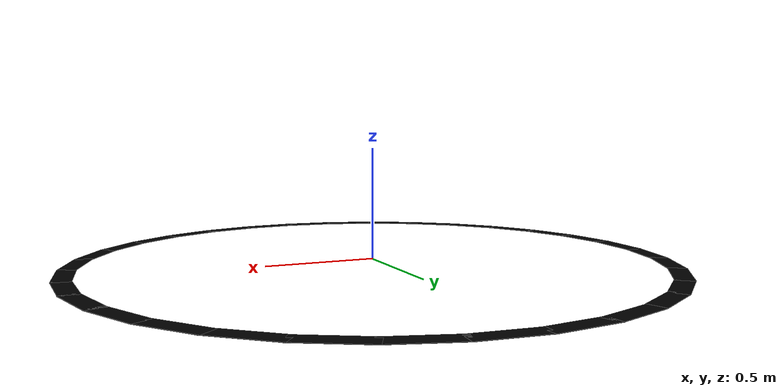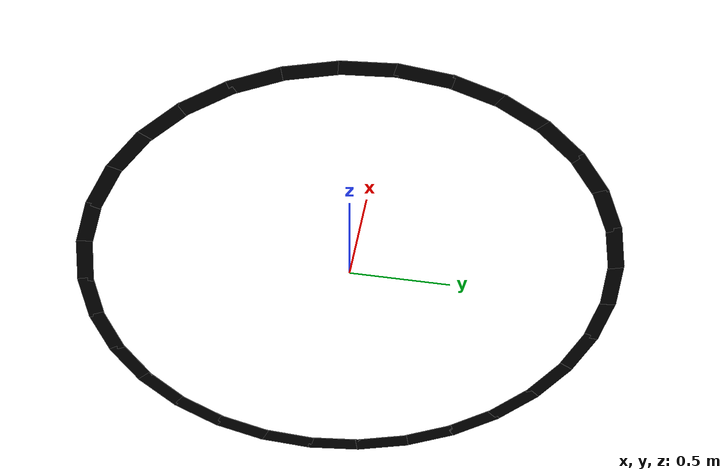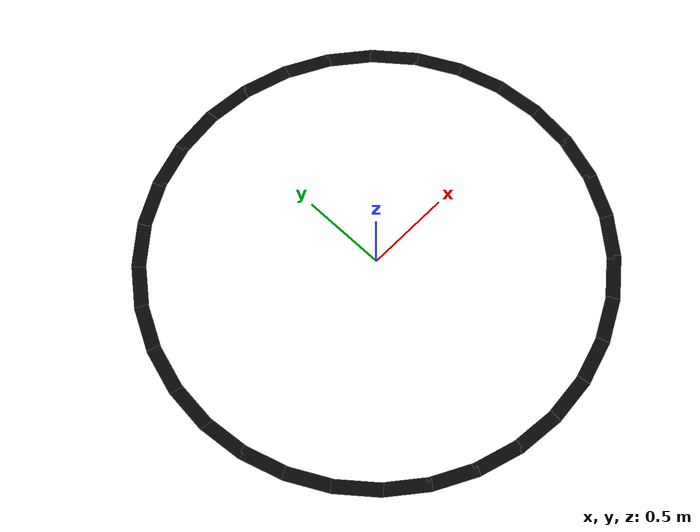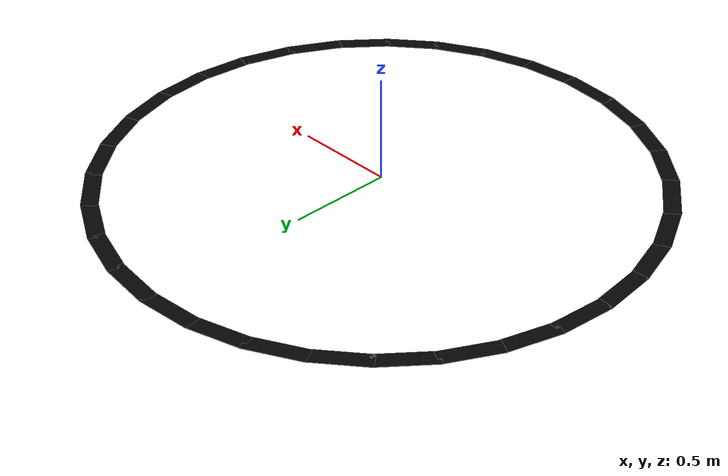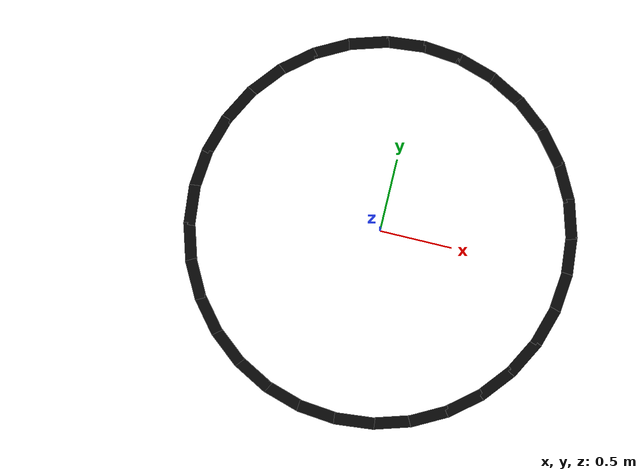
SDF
<?xml version="1.0"?>
<sdf version="1.8">
  <model name="line_track_circle">
    <static>true</static>
    <link name="track">
      <visual name='seg_000'>
        <pose>1.293740 0.127422 0.001000 0.000000 0.000000 1.668971</pose>
        <geometry>
          <box>
            <size>0.275675 0.080000 0.002000</size>
          </box>
        </geometry>
      <material>
        <ambient>0.02 0.02 0.02 1</ambient>
        <diffuse>0.02 0.02 0.02 1</diffuse>
        <specular>0.0 0.0 0.0 1</specular>
      </material>
      </visual>
      <visual name='seg_001'>
        <pose>1.244022 0.377370 0.001000 0.000000 0.000000 1.865321</pose>
        <geometry>
          <box>
            <size>0.275675 0.080000 0.002000</size>
          </box>
        </geometry>
      <material>
        <ambient>0.02 0.02 0.02 1</ambient>
        <diffuse>0.02 0.02 0.02 1</diffuse>
        <specular>0.0 0.0 0.0 1</specular>
      </material>
      </visual>
      <visual name='seg_002'>
        <pose>1.146498 0.612816 0.001000 0.000000 0.000000 2.061670</pose>
        <geometry>
          <box>
            <size>0.275675 0.080000 0.002000</size>
          </box>
        </geometry>
      <material>
        <ambient>0.02 0.02 0.02 1</ambient>
        <diffuse>0.02 0.02 0.02 1</diffuse>
        <specular>0.0 0.0 0.0 1</specular>
      </material>
      </visual>
      <visual name='seg_003'>
        <pose>1.004914 0.824711 0.001000 0.000000 0.000000 2.258020</pose>
        <geometry>
          <box>
            <size>0.275675 0.080000 0.002000</size>
          </box>
        </geometry>
      <material>
        <ambient>0.02 0.02 0.02 1</ambient>
        <diffuse>0.02 0.02 0.02 1</diffuse>
        <specular>0.0 0.0 0.0 1</specular>
      </material>
      </visual>
      <visual name='seg_004'>
        <pose>0.824711 1.004914 0.001000 0.000000 0.000000 2.454369</pose>
        <geometry>
          <box>
            <size>0.275675 0.080000 0.002000</size>
          </box>
        </geometry>
      <material>
        <ambient>0.02 0.02 0.02 1</ambient>
        <diffuse>0.02 0.02 0.02 1</diffuse>
        <specular>0.0 0.0 0.0 1</specular>
      </material>
      </visual>
      <visual name='seg_005'>
        <pose>0.612816 1.146498 0.001000 0.000000 0.000000 2.650719</pose>
        <geometry>
          <box>
            <size>0.275675 0.080000 0.002000</size>
          </box>
        </geometry>
      <material>
        <ambient>0.02 0.02 0.02 1</ambient>
        <diffuse>0.02 0.02 0.02 1</diffuse>
        <specular>0.0 0.0 0.0 1</specular>
      </material>
      </visual>
      <visual name='seg_006'>
        <pose>0.377370 1.244022 0.001000 0.000000 0.000000 2.847068</pose>
        <geometry>
          <box>
            <size>0.275675 0.080000 0.002000</size>
          </box>
        </geometry>
      <material>
        <ambient>0.02 0.02 0.02 1</ambient>
        <diffuse>0.02 0.02 0.02 1</diffuse>
        <specular>0.0 0.0 0.0 1</specular>
      </material>
      </visual>
      <visual name='seg_007'>
        <pose>0.127422 1.293740 0.001000 0.000000 0.000000 3.043418</pose>
        <geometry>
          <box>
            <size>0.275675 0.080000 0.002000</size>
          </box>
        </geometry>
      <material>
        <ambient>0.02 0.02 0.02 1</ambient>
        <diffuse>0.02 0.02 0.02 1</diffuse>
        <specular>0.0 0.0 0.0 1</specular>
      </material>
      </visual>
      <visual name='seg_008'>
        <pose>-0.127422 1.293740 0.001000 0.000000 0.000000 3.239767</pose>
        <geometry>
          <box>
            <size>0.275675 0.080000 0.002000</size>
          </box>
        </geometry>
      <material>
        <ambient>0.02 0.02 0.02 1</ambient>
        <diffuse>0.02 0.02 0.02 1</diffuse>
        <specular>0.0 0.0 0.0 1</specular>
      </material>
      </visual>
      <visual name='seg_009'>
        <pose>-0.377370 1.244022 0.001000 0.000000 0.000000 3.436117</pose>
        <geometry>
          <box>
            <size>0.275675 0.080000 0.002000</size>
          </box>
        </geometry>
      <material>
        <ambient>0.02 0.02 0.02 1</ambient>
        <diffuse>0.02 0.02 0.02 1</diffuse>
        <specular>0.0 0.0 0.0 1</specular>
      </material>
      </visual>
      <visual name='seg_010'>
        <pose>-0.612816 1.146498 0.001000 0.000000 0.000000 3.632467</pose>
        <geometry>
          <box>
            <size>0.275675 0.080000 0.002000</size>
          </box>
        </geometry>
      <material>
        <ambient>0.02 0.02 0.02 1</ambient>
        <diffuse>0.02 0.02 0.02 1</diffuse>
        <specular>0.0 0.0 0.0 1</specular>
      </material>
      </visual>
      <visual name='seg_011'>
        <pose>-0.824711 1.004914 0.001000 0.000000 0.000000 3.828816</pose>
        <geometry>
          <box>
            <size>0.275675 0.080000 0.002000</size>
          </box>
        </geometry>
      <material>
        <ambient>0.02 0.02 0.02 1</ambient>
        <diffuse>0.02 0.02 0.02 1</diffuse>
        <specular>0.0 0.0 0.0 1</specular>
      </material>
      </visual>
      <visual name='seg_012'>
        <pose>-1.004914 0.824711 0.001000 0.000000 0.000000 4.025166</pose>
        <geometry>
          <box>
            <size>0.275675 0.080000 0.002000</size>
          </box>
        </geometry>
      <material>
        <ambient>0.02 0.02 0.02 1</ambient>
        <diffuse>0.02 0.02 0.02 1</diffuse>
        <specular>0.0 0.0 0.0 1</specular>
      </material>
      </visual>
      <visual name='seg_013'>
        <pose>-1.146498 0.612816 0.001000 0.000000 0.000000 4.221515</pose>
        <geometry>
          <box>
            <size>0.275675 0.080000 0.002000</size>
          </box>
        </geometry>
      <material>
        <ambient>0.02 0.02 0.02 1</ambient>
        <diffuse>0.02 0.02 0.02 1</diffuse>
        <specular>0.0 0.0 0.0 1</specular>
      </material>
      </visual>
      <visual name='seg_014'>
        <pose>-1.244022 0.377370 0.001000 0.000000 0.000000 4.417865</pose>
        <geometry>
          <box>
            <size>0.275675 0.080000 0.002000</size>
          </box>
        </geometry>
      <material>
        <ambient>0.02 0.02 0.02 1</ambient>
        <diffuse>0.02 0.02 0.02 1</diffuse>
        <specular>0.0 0.0 0.0 1</specular>
      </material>
      </visual>
      <visual name='seg_015'>
        <pose>-1.293740 0.127422 0.001000 0.000000 0.000000 4.614214</pose>
        <geometry>
          <box>
            <size>0.275675 0.080000 0.002000</size>
          </box>
        </geometry>
      <material>
        <ambient>0.02 0.02 0.02 1</ambient>
        <diffuse>0.02 0.02 0.02 1</diffuse>
        <specular>0.0 0.0 0.0 1</specular>
      </material>
      </visual>
      <visual name='seg_016'>
        <pose>-1.293740 -0.127422 0.001000 0.000000 0.000000 4.810564</pose>
        <geometry>
          <box>
            <size>0.275675 0.080000 0.002000</size>
          </box>
        </geometry>
      <material>
        <ambient>0.02 0.02 0.02 1</ambient>
        <diffuse>0.02 0.02 0.02 1</diffuse>
        <specular>0.0 0.0 0.0 1</specular>
      </material>
      </visual>
      <visual name='seg_017'>
        <pose>-1.244022 -0.377370 0.001000 0.000000 0.000000 5.006913</pose>
        <geometry>
          <box>
            <size>0.275675 0.080000 0.002000</size>
          </box>
        </geometry>
      <material>
        <ambient>0.02 0.02 0.02 1</ambient>
        <diffuse>0.02 0.02 0.02 1</diffuse>
        <specular>0.0 0.0 0.0 1</specular>
      </material>
      </visual>
      <visual name='seg_018'>
        <pose>-1.146498 -0.612816 0.001000 0.000000 0.000000 5.203263</pose>
        <geometry>
          <box>
            <size>0.275675 0.080000 0.002000</size>
          </box>
        </geometry>
      <material>
        <ambient>0.02 0.02 0.02 1</ambient>
        <diffuse>0.02 0.02 0.02 1</diffuse>
        <specular>0.0 0.0 0.0 1</specular>
      </material>
      </visual>
      <visual name='seg_019'>
        <pose>-1.004914 -0.824711 0.001000 0.000000 0.000000 5.399612</pose>
        <geometry>
          <box>
            <size>0.275675 0.080000 0.002000</size>
          </box>
        </geometry>
      <material>
        <ambient>0.02 0.02 0.02 1</ambient>
        <diffuse>0.02 0.02 0.02 1</diffuse>
        <specular>0.0 0.0 0.0 1</specular>
      </material>
      </visual>
      <visual name='seg_020'>
        <pose>-0.824711 -1.004914 0.001000 0.000000 0.000000 5.595962</pose>
        <geometry>
          <box>
            <size>0.275675 0.080000 0.002000</size>
          </box>
        </geometry>
      <material>
        <ambient>0.02 0.02 0.02 1</ambient>
        <diffuse>0.02 0.02 0.02 1</diffuse>
        <specular>0.0 0.0 0.0 1</specular>
      </material>
      </visual>
      <visual name='seg_021'>
        <pose>-0.612816 -1.146498 0.001000 0.000000 0.000000 5.792311</pose>
        <geometry>
          <box>
            <size>0.275675 0.080000 0.002000</size>
          </box>
        </geometry>
      <material>
        <ambient>0.02 0.02 0.02 1</ambient>
        <diffuse>0.02 0.02 0.02 1</diffuse>
        <specular>0.0 0.0 0.0 1</specular>
      </material>
      </visual>
      <visual name='seg_022'>
        <pose>-0.377370 -1.244022 0.001000 0.000000 0.000000 5.988661</pose>
        <geometry>
          <box>
            <size>0.275675 0.080000 0.002000</size>
          </box>
        </geometry>
      <material>
        <ambient>0.02 0.02 0.02 1</ambient>
        <diffuse>0.02 0.02 0.02 1</diffuse>
        <specular>0.0 0.0 0.0 1</specular>
      </material>
      </visual>
      <visual name='seg_023'>
        <pose>-0.127422 -1.293740 0.001000 0.000000 0.000000 6.185011</pose>
        <geometry>
          <box>
            <size>0.275675 0.080000 0.002000</size>
          </box>
        </geometry>
      <material>
        <ambient>0.02 0.02 0.02 1</ambient>
        <diffuse>0.02 0.02 0.02 1</diffuse>
        <specular>0.0 0.0 0.0 1</specular>
      </material>
      </visual>
      <visual name='seg_024'>
        <pose>0.127422 -1.293740 0.001000 0.000000 0.000000 6.381360</pose>
        <geometry>
          <box>
            <size>0.275675 0.080000 0.002000</size>
          </box>
        </geometry>
      <material>
        <ambient>0.02 0.02 0.02 1</ambient>
        <diffuse>0.02 0.02 0.02 1</diffuse>
        <specular>0.0 0.0 0.0 1</specular>
      </material>
      </visual>
      <visual name='seg_025'>
        <pose>0.377370 -1.244022 0.001000 0.000000 0.000000 6.577710</pose>
        <geometry>
          <box>
            <size>0.275675 0.080000 0.002000</size>
          </box>
        </geometry>
      <material>
        <ambient>0.02 0.02 0.02 1</ambient>
        <diffuse>0.02 0.02 0.02 1</diffuse>
        <specular>0.0 0.0 0.0 1</specular>
      </material>
      </visual>
      <visual name='seg_026'>
        <pose>0.612816 -1.146498 0.001000 0.000000 0.000000 6.774059</pose>
        <geometry>
          <box>
            <size>0.275675 0.080000 0.002000</size>
          </box>
        </geometry>
      <material>
        <ambient>0.02 0.02 0.02 1</ambient>
        <diffuse>0.02 0.02 0.02 1</diffuse>
        <specular>0.0 0.0 0.0 1</specular>
      </material>
      </visual>
      <visual name='seg_027'>
        <pose>0.824711 -1.004914 0.001000 0.000000 0.000000 6.970409</pose>
        <geometry>
          <box>
            <size>0.275675 0.080000 0.002000</size>
          </box>
        </geometry>
      <material>
        <ambient>0.02 0.02 0.02 1</ambient>
        <diffuse>0.02 0.02 0.02 1</diffuse>
        <specular>0.0 0.0 0.0 1</specular>
      </material>
      </visual>
      <visual name='seg_028'>
        <pose>1.004914 -0.824711 0.001000 0.000000 0.000000 7.166758</pose>
        <geometry>
          <box>
            <size>0.275675 0.080000 0.002000</size>
          </box>
        </geometry>
      <material>
        <ambient>0.02 0.02 0.02 1</ambient>
        <diffuse>0.02 0.02 0.02 1</diffuse>
        <specular>0.0 0.0 0.0 1</specular>
      </material>
      </visual>
      <visual name='seg_029'>
        <pose>1.146498 -0.612816 0.001000 0.000000 0.000000 7.363108</pose>
        <geometry>
          <box>
            <size>0.275675 0.080000 0.002000</size>
          </box>
        </geometry>
      <material>
        <ambient>0.02 0.02 0.02 1</ambient>
        <diffuse>0.02 0.02 0.02 1</diffuse>
        <specular>0.0 0.0 0.0 1</specular>
      </material>
      </visual>
      <visual name='seg_030'>
        <pose>1.244022 -0.377370 0.001000 0.000000 0.000000 7.559457</pose>
        <geometry>
          <box>
            <size>0.275675 0.080000 0.002000</size>
          </box>
        </geometry>
      <material>
        <ambient>0.02 0.02 0.02 1</ambient>
        <diffuse>0.02 0.02 0.02 1</diffuse>
        <specular>0.0 0.0 0.0 1</specular>
      </material>
      </visual>
      <visual name='seg_031'>
        <pose>1.293740 -0.127422 0.001000 0.000000 0.000000 7.755807</pose>
        <geometry>
          <box>
            <size>0.275675 0.080000 0.002000</size>
          </box>
        </geometry>
      <material>
        <ambient>0.02 0.02 0.02 1</ambient>
        <diffuse>0.02 0.02 0.02 1</diffuse>
        <specular>0.0 0.0 0.0 1</specular>
      </material>
      </visual>
    </link>
  </model>
</sdf>
